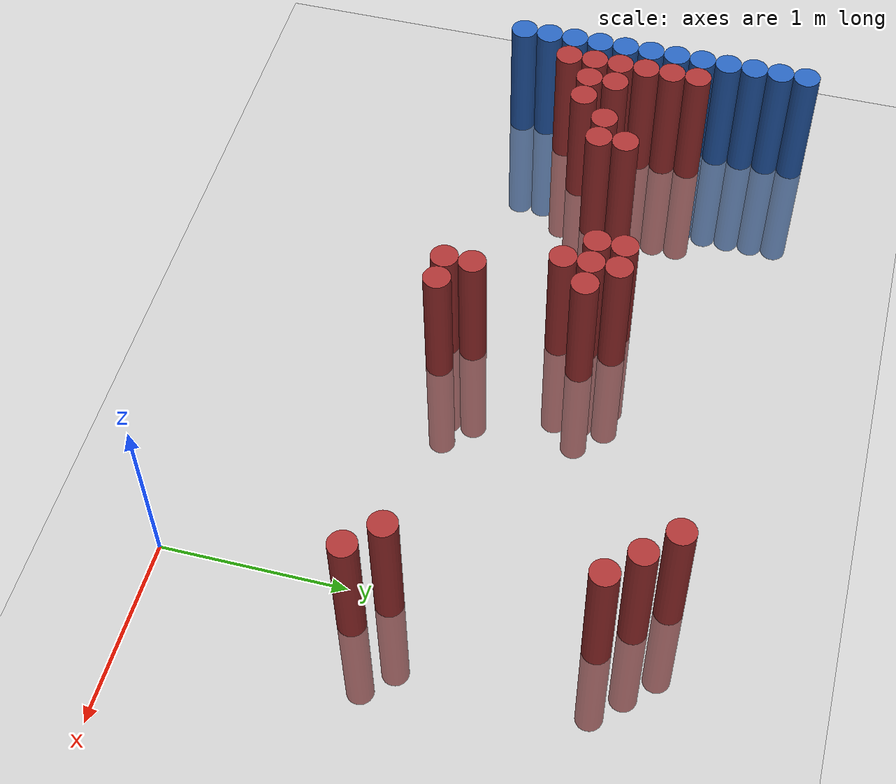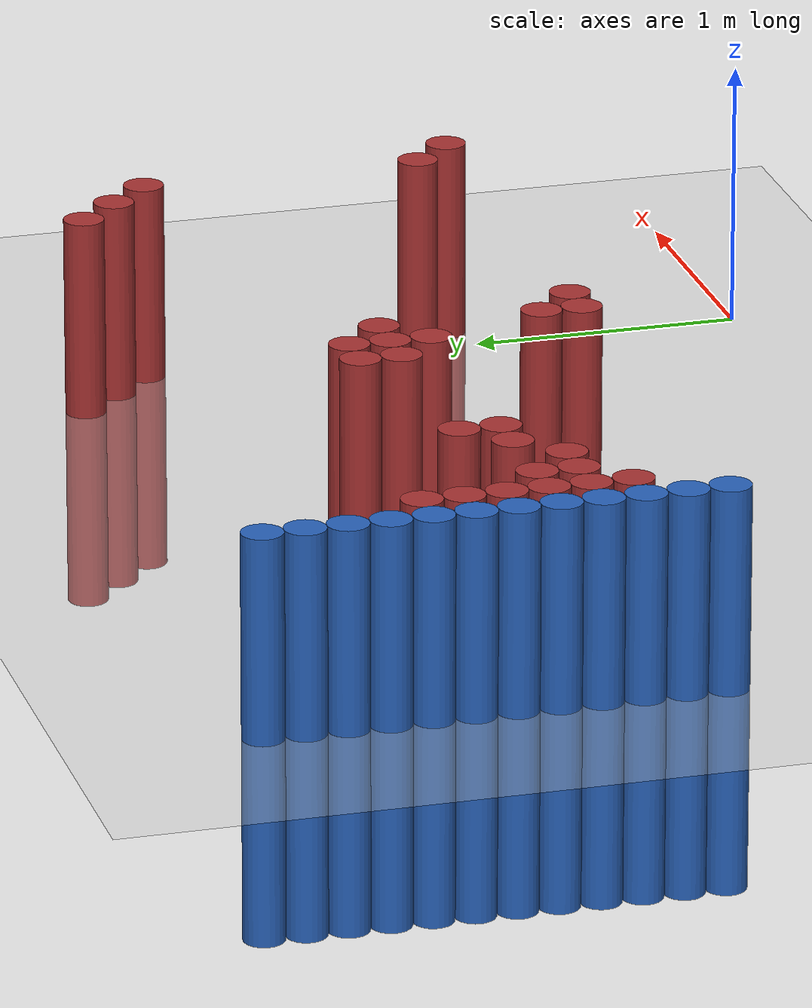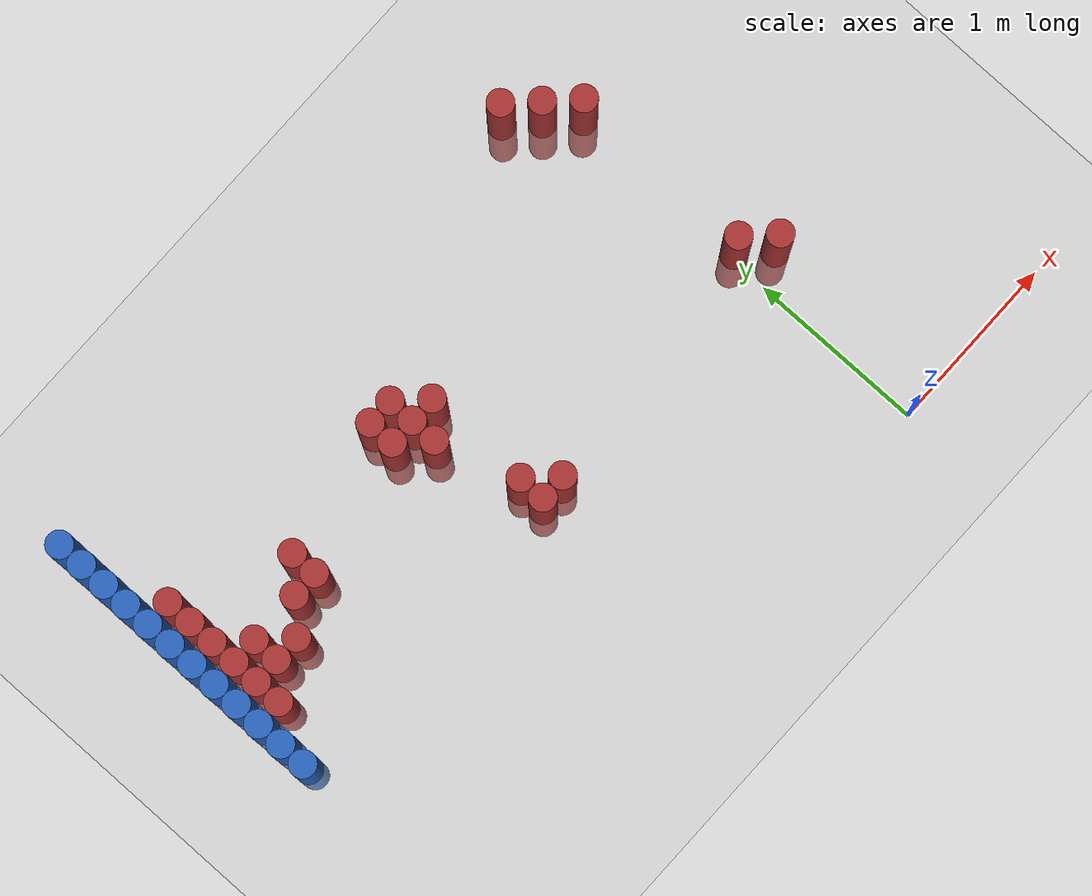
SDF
<sdf version="1.6">
 <world name="default">
  <model name="ground_plane">
   <static>1</static>
   <link name="link">
    <collision name="collision">
     <geometry><plane><normal>0 0 1</normal><size>100 100</size></plane></geometry>
     <surface><friction><ode><mu>100</mu><mu2>50</mu2></ode></friction></surface>
    </collision>
    <visual name="visual">
     <cast_shadows>0</cast_shadows>
     <geometry><plane><normal>0 0 1</normal><size>100 100</size></plane></geometry>
     <material>
      <script><uri>file://media/materials/scripts/gazebo.material</uri><name>Gazebo/Grey</name></script>
     </material>
    </visual>
   </link>
  </model>
  <model name="unit_cylinder_129">
   <static>1</static>
   <pose>-3.425000 1.075000 0.000000 0.000000 0.000000 0.000000</pose>
   <link name="link">
    <inertial>
     <mass>1</mass>
     <inertia><ixx>0.145833</ixx><ixy>0</ixy><ixz>0</ixz><iyy>0.145833</iyy><iyz>0</iyz><izz>0.125</izz></inertia>
    </inertial>
    <collision name="collision">
     <geometry><cylinder><radius>0.075000</radius><length>1.5</length></cylinder></geometry>
    </collision>
    <visual name="visual">
     <geometry><cylinder><radius>0.075000</radius><length>1.5</length></cylinder></geometry>
     <material>
      <ambient>0.152000 0.379000 0.720000 1</ambient>
      <diffuse>0.152000 0.379000 0.720000 1</diffuse>
     </material>
     <material>
      <script><name>Gazebo/Grey</name><uri>file://media/materials/scripts/gazebo.material</uri></script>
     </material>
    </visual>
   </link>
  </model>
  <model name="unit_cylinder_131">
   <static>1</static>
   <pose>-3.425000 1.225000 0.000000 0.000000 0.000000 0.000000</pose>
   <link name="link">
    <inertial>
     <mass>1</mass>
     <inertia><ixx>0.145833</ixx><ixy>0</ixy><ixz>0</ixz><iyy>0.145833</iyy><iyz>0</iyz><izz>0.125</izz></inertia>
    </inertial>
    <collision name="collision">
     <geometry><cylinder><radius>0.075000</radius><length>1.5</length></cylinder></geometry>
    </collision>
    <visual name="visual">
     <geometry><cylinder><radius>0.075000</radius><length>1.5</length></cylinder></geometry>
     <material>
      <ambient>0.152000 0.379000 0.720000 1</ambient>
      <diffuse>0.152000 0.379000 0.720000 1</diffuse>
     </material>
     <material>
      <script><name>Gazebo/Grey</name><uri>file://media/materials/scripts/gazebo.material</uri></script>
     </material>
    </visual>
   </link>
  </model>
  <model name="unit_cylinder_133">
   <static>1</static>
   <pose>-3.425000 1.375000 0.000000 0.000000 0.000000 0.000000</pose>
   <link name="link">
    <inertial>
     <mass>1</mass>
     <inertia><ixx>0.145833</ixx><ixy>0</ixy><ixz>0</ixz><iyy>0.145833</iyy><iyz>0</iyz><izz>0.125</izz></inertia>
    </inertial>
    <collision name="collision">
     <geometry><cylinder><radius>0.075000</radius><length>1.5</length></cylinder></geometry>
    </collision>
    <visual name="visual">
     <geometry><cylinder><radius>0.075000</radius><length>1.5</length></cylinder></geometry>
     <material>
      <ambient>0.152000 0.379000 0.720000 1</ambient>
      <diffuse>0.152000 0.379000 0.720000 1</diffuse>
     </material>
     <material>
      <script><name>Gazebo/Grey</name><uri>file://media/materials/scripts/gazebo.material</uri></script>
     </material>
    </visual>
   </link>
  </model>
  <model name="unit_cylinder_135">
   <static>1</static>
   <pose>-3.425000 1.525000 0.000000 0.000000 0.000000 0.000000</pose>
   <link name="link">
    <inertial>
     <mass>1</mass>
     <inertia><ixx>0.145833</ixx><ixy>0</ixy><ixz>0</ixz><iyy>0.145833</iyy><iyz>0</iyz><izz>0.125</izz></inertia>
    </inertial>
    <collision name="collision">
     <geometry><cylinder><radius>0.075000</radius><length>1.5</length></cylinder></geometry>
    </collision>
    <visual name="visual">
     <geometry><cylinder><radius>0.075000</radius><length>1.5</length></cylinder></geometry>
     <material>
      <ambient>0.152000 0.379000 0.720000 1</ambient>
      <diffuse>0.152000 0.379000 0.720000 1</diffuse>
     </material>
     <material>
      <script><name>Gazebo/Grey</name><uri>file://media/materials/scripts/gazebo.material</uri></script>
     </material>
    </visual>
   </link>
  </model>
  <model name="unit_cylinder_137">
   <static>1</static>
   <pose>-3.425000 1.675000 0.000000 0.000000 0.000000 0.000000</pose>
   <link name="link">
    <inertial>
     <mass>1</mass>
     <inertia><ixx>0.145833</ixx><ixy>0</ixy><ixz>0</ixz><iyy>0.145833</iyy><iyz>0</iyz><izz>0.125</izz></inertia>
    </inertial>
    <collision name="collision">
     <geometry><cylinder><radius>0.075000</radius><length>1.5</length></cylinder></geometry>
    </collision>
    <visual name="visual">
     <geometry><cylinder><radius>0.075000</radius><length>1.5</length></cylinder></geometry>
     <material>
      <ambient>0.152000 0.379000 0.720000 1</ambient>
      <diffuse>0.152000 0.379000 0.720000 1</diffuse>
     </material>
     <material>
      <script><name>Gazebo/Grey</name><uri>file://media/materials/scripts/gazebo.material</uri></script>
     </material>
    </visual>
   </link>
  </model>
  <model name="unit_cylinder_139">
   <static>1</static>
   <pose>-3.425000 1.825000 0.000000 0.000000 0.000000 0.000000</pose>
   <link name="link">
    <inertial>
     <mass>1</mass>
     <inertia><ixx>0.145833</ixx><ixy>0</ixy><ixz>0</ixz><iyy>0.145833</iyy><iyz>0</iyz><izz>0.125</izz></inertia>
    </inertial>
    <collision name="collision">
     <geometry><cylinder><radius>0.075000</radius><length>1.5</length></cylinder></geometry>
    </collision>
    <visual name="visual">
     <geometry><cylinder><radius>0.075000</radius><length>1.5</length></cylinder></geometry>
     <material>
      <ambient>0.152000 0.379000 0.720000 1</ambient>
      <diffuse>0.152000 0.379000 0.720000 1</diffuse>
     </material>
     <material>
      <script><name>Gazebo/Grey</name><uri>file://media/materials/scripts/gazebo.material</uri></script>
     </material>
    </visual>
   </link>
  </model>
  <model name="unit_cylinder_141">
   <static>1</static>
   <pose>-3.425000 1.975000 0.000000 0.000000 0.000000 0.000000</pose>
   <link name="link">
    <inertial>
     <mass>1</mass>
     <inertia><ixx>0.145833</ixx><ixy>0</ixy><ixz>0</ixz><iyy>0.145833</iyy><iyz>0</iyz><izz>0.125</izz></inertia>
    </inertial>
    <collision name="collision">
     <geometry><cylinder><radius>0.075000</radius><length>1.5</length></cylinder></geometry>
    </collision>
    <visual name="visual">
     <geometry><cylinder><radius>0.075000</radius><length>1.5</length></cylinder></geometry>
     <material>
      <ambient>0.152000 0.379000 0.720000 1</ambient>
      <diffuse>0.152000 0.379000 0.720000 1</diffuse>
     </material>
     <material>
      <script><name>Gazebo/Grey</name><uri>file://media/materials/scripts/gazebo.material</uri></script>
     </material>
    </visual>
   </link>
  </model>
  <model name="unit_cylinder_143">
   <static>1</static>
   <pose>-3.425000 2.125000 0.000000 0.000000 0.000000 0.000000</pose>
   <link name="link">
    <inertial>
     <mass>1</mass>
     <inertia><ixx>0.145833</ixx><ixy>0</ixy><ixz>0</ixz><iyy>0.145833</iyy><iyz>0</iyz><izz>0.125</izz></inertia>
    </inertial>
    <collision name="collision">
     <geometry><cylinder><radius>0.075000</radius><length>1.5</length></cylinder></geometry>
    </collision>
    <visual name="visual">
     <geometry><cylinder><radius>0.075000</radius><length>1.5</length></cylinder></geometry>
     <material>
      <ambient>0.152000 0.379000 0.720000 1</ambient>
      <diffuse>0.152000 0.379000 0.720000 1</diffuse>
     </material>
     <material>
      <script><name>Gazebo/Grey</name><uri>file://media/materials/scripts/gazebo.material</uri></script>
     </material>
    </visual>
   </link>
  </model>
  <model name="unit_cylinder_145">
   <static>1</static>
   <pose>-3.425000 2.275000 0.000000 0.000000 0.000000 0.000000</pose>
   <link name="link">
    <inertial>
     <mass>1</mass>
     <inertia><ixx>0.145833</ixx><ixy>0</ixy><ixz>0</ixz><iyy>0.145833</iyy><iyz>0</iyz><izz>0.125</izz></inertia>
    </inertial>
    <collision name="collision">
     <geometry><cylinder><radius>0.075000</radius><length>1.5</length></cylinder></geometry>
    </collision>
    <visual name="visual">
     <geometry><cylinder><radius>0.075000</radius><length>1.5</length></cylinder></geometry>
     <material>
      <ambient>0.152000 0.379000 0.720000 1</ambient>
      <diffuse>0.152000 0.379000 0.720000 1</diffuse>
     </material>
     <material>
      <script><name>Gazebo/Grey</name><uri>file://media/materials/scripts/gazebo.material</uri></script>
     </material>
    </visual>
   </link>
  </model>
  <model name="unit_cylinder_147">
   <static>1</static>
   <pose>-3.425000 2.425000 0.000000 0.000000 0.000000 0.000000</pose>
   <link name="link">
    <inertial>
     <mass>1</mass>
     <inertia><ixx>0.145833</ixx><ixy>0</ixy><ixz>0</ixz><iyy>0.145833</iyy><iyz>0</iyz><izz>0.125</izz></inertia>
    </inertial>
    <collision name="collision">
     <geometry><cylinder><radius>0.075000</radius><length>1.5</length></cylinder></geometry>
    </collision>
    <visual name="visual">
     <geometry><cylinder><radius>0.075000</radius><length>1.5</length></cylinder></geometry>
     <material>
      <ambient>0.152000 0.379000 0.720000 1</ambient>
      <diffuse>0.152000 0.379000 0.720000 1</diffuse>
     </material>
     <material>
      <script><name>Gazebo/Grey</name><uri>file://media/materials/scripts/gazebo.material</uri></script>
     </material>
    </visual>
   </link>
  </model>
  <model name="unit_cylinder_149">
   <static>1</static>
   <pose>-3.425000 2.575000 0.000000 0.000000 0.000000 0.000000</pose>
   <link name="link">
    <inertial>
     <mass>1</mass>
     <inertia><ixx>0.145833</ixx><ixy>0</ixy><ixz>0</ixz><iyy>0.145833</iyy><iyz>0</iyz><izz>0.125</izz></inertia>
    </inertial>
    <collision name="collision">
     <geometry><cylinder><radius>0.075000</radius><length>1.5</length></cylinder></geometry>
    </collision>
    <visual name="visual">
     <geometry><cylinder><radius>0.075000</radius><length>1.5</length></cylinder></geometry>
     <material>
      <ambient>0.152000 0.379000 0.720000 1</ambient>
      <diffuse>0.152000 0.379000 0.720000 1</diffuse>
     </material>
     <material>
      <script><name>Gazebo/Grey</name><uri>file://media/materials/scripts/gazebo.material</uri></script>
     </material>
    </visual>
   </link>
  </model>
  <model name="unit_cylinder_151">
   <static>1</static>
   <pose>-3.425000 2.725000 0.000000 0.000000 0.000000 0.000000</pose>
   <link name="link">
    <inertial>
     <mass>1</mass>
     <inertia><ixx>0.145833</ixx><ixy>0</ixy><ixz>0</ixz><iyy>0.145833</iyy><iyz>0</iyz><izz>0.125</izz></inertia>
    </inertial>
    <collision name="collision">
     <geometry><cylinder><radius>0.075000</radius><length>1.5</length></cylinder></geometry>
    </collision>
    <visual name="visual">
     <geometry><cylinder><radius>0.075000</radius><length>1.5</length></cylinder></geometry>
     <material>
      <ambient>0.152000 0.379000 0.720000 1</ambient>
      <diffuse>0.152000 0.379000 0.720000 1</diffuse>
     </material>
     <material>
      <script><name>Gazebo/Grey</name><uri>file://media/materials/scripts/gazebo.material</uri></script>
     </material>
    </visual>
   </link>
  </model>
  <model name="unit_cylinder_228">
   <static>1</static>
   <pose>-3.425000 1.075000 0.000000 0.000000 0.000000 0.000000</pose>
   <link name="link">
    <inertial>
     <mass>1</mass>
     <inertia><ixx>0.145833</ixx><ixy>0</ixy><ixz>0</ixz><iyy>0.145833</iyy><iyz>0</iyz><izz>0.125</izz></inertia>
    </inertial>
    <collision name="collision">
     <geometry><cylinder><radius>0.075000</radius><length>1.5</length></cylinder></geometry>
    </collision>
    <visual name="visual">
     <geometry><cylinder><radius>0.075000</radius><length>1.5</length></cylinder></geometry>
     <material>
      <ambient>0.152000 0.379000 0.720000 1</ambient>
      <diffuse>0.152000 0.379000 0.720000 1</diffuse>
     </material>
     <material>
      <script><name>Gazebo/Grey</name><uri>file://media/materials/scripts/gazebo.material</uri></script>
     </material>
    </visual>
   </link>
  </model>
  <model name="unit_cylinder_229">
   <static>1</static>
   <pose>-3.425000 1.225000 0.000000 0.000000 0.000000 0.000000</pose>
   <link name="link">
    <inertial>
     <mass>1</mass>
     <inertia><ixx>0.145833</ixx><ixy>0</ixy><ixz>0</ixz><iyy>0.145833</iyy><iyz>0</iyz><izz>0.125</izz></inertia>
    </inertial>
    <collision name="collision">
     <geometry><cylinder><radius>0.075000</radius><length>1.5</length></cylinder></geometry>
    </collision>
    <visual name="visual">
     <geometry><cylinder><radius>0.075000</radius><length>1.5</length></cylinder></geometry>
     <material>
      <ambient>0.152000 0.379000 0.720000 1</ambient>
      <diffuse>0.152000 0.379000 0.720000 1</diffuse>
     </material>
     <material>
      <script><name>Gazebo/Grey</name><uri>file://media/materials/scripts/gazebo.material</uri></script>
     </material>
    </visual>
   </link>
  </model>
  <model name="unit_cylinder_230">
   <static>1</static>
   <pose>-3.425000 1.375000 0.000000 0.000000 0.000000 0.000000</pose>
   <link name="link">
    <inertial>
     <mass>1</mass>
     <inertia><ixx>0.145833</ixx><ixy>0</ixy><ixz>0</ixz><iyy>0.145833</iyy><iyz>0</iyz><izz>0.125</izz></inertia>
    </inertial>
    <collision name="collision">
     <geometry><cylinder><radius>0.075000</radius><length>1.5</length></cylinder></geometry>
    </collision>
    <visual name="visual">
     <geometry><cylinder><radius>0.075000</radius><length>1.5</length></cylinder></geometry>
     <material>
      <ambient>0.152000 0.379000 0.720000 1</ambient>
      <diffuse>0.152000 0.379000 0.720000 1</diffuse>
     </material>
     <material>
      <script><name>Gazebo/Grey</name><uri>file://media/materials/scripts/gazebo.material</uri></script>
     </material>
    </visual>
   </link>
  </model>
  <model name="unit_cylinder_231">
   <static>1</static>
   <pose>-3.425000 1.525000 0.000000 0.000000 0.000000 0.000000</pose>
   <link name="link">
    <inertial>
     <mass>1</mass>
     <inertia><ixx>0.145833</ixx><ixy>0</ixy><ixz>0</ixz><iyy>0.145833</iyy><iyz>0</iyz><izz>0.125</izz></inertia>
    </inertial>
    <collision name="collision">
     <geometry><cylinder><radius>0.075000</radius><length>1.5</length></cylinder></geometry>
    </collision>
    <visual name="visual">
     <geometry><cylinder><radius>0.075000</radius><length>1.5</length></cylinder></geometry>
     <material>
      <ambient>0.152000 0.379000 0.720000 1</ambient>
      <diffuse>0.152000 0.379000 0.720000 1</diffuse>
     </material>
     <material>
      <script><name>Gazebo/Grey</name><uri>file://media/materials/scripts/gazebo.material</uri></script>
     </material>
    </visual>
   </link>
  </model>
  <model name="unit_cylinder_232">
   <static>1</static>
   <pose>-3.425000 1.675000 0.000000 0.000000 0.000000 0.000000</pose>
   <link name="link">
    <inertial>
     <mass>1</mass>
     <inertia><ixx>0.145833</ixx><ixy>0</ixy><ixz>0</ixz><iyy>0.145833</iyy><iyz>0</iyz><izz>0.125</izz></inertia>
    </inertial>
    <collision name="collision">
     <geometry><cylinder><radius>0.075000</radius><length>1.5</length></cylinder></geometry>
    </collision>
    <visual name="visual">
     <geometry><cylinder><radius>0.075000</radius><length>1.5</length></cylinder></geometry>
     <material>
      <ambient>0.152000 0.379000 0.720000 1</ambient>
      <diffuse>0.152000 0.379000 0.720000 1</diffuse>
     </material>
     <material>
      <script><name>Gazebo/Grey</name><uri>file://media/materials/scripts/gazebo.material</uri></script>
     </material>
    </visual>
   </link>
  </model>
  <model name="unit_cylinder_233">
   <static>1</static>
   <pose>-3.425000 1.825000 0.000000 0.000000 0.000000 0.000000</pose>
   <link name="link">
    <inertial>
     <mass>1</mass>
     <inertia><ixx>0.145833</ixx><ixy>0</ixy><ixz>0</ixz><iyy>0.145833</iyy><iyz>0</iyz><izz>0.125</izz></inertia>
    </inertial>
    <collision name="collision">
     <geometry><cylinder><radius>0.075000</radius><length>1.5</length></cylinder></geometry>
    </collision>
    <visual name="visual">
     <geometry><cylinder><radius>0.075000</radius><length>1.5</length></cylinder></geometry>
     <material>
      <ambient>0.152000 0.379000 0.720000 1</ambient>
      <diffuse>0.152000 0.379000 0.720000 1</diffuse>
     </material>
     <material>
      <script><name>Gazebo/Grey</name><uri>file://media/materials/scripts/gazebo.material</uri></script>
     </material>
    </visual>
   </link>
  </model>
  <model name="unit_cylinder_234">
   <static>1</static>
   <pose>-3.425000 1.975000 0.000000 0.000000 0.000000 0.000000</pose>
   <link name="link">
    <inertial>
     <mass>1</mass>
     <inertia><ixx>0.145833</ixx><ixy>0</ixy><ixz>0</ixz><iyy>0.145833</iyy><iyz>0</iyz><izz>0.125</izz></inertia>
    </inertial>
    <collision name="collision">
     <geometry><cylinder><radius>0.075000</radius><length>1.5</length></cylinder></geometry>
    </collision>
    <visual name="visual">
     <geometry><cylinder><radius>0.075000</radius><length>1.5</length></cylinder></geometry>
     <material>
      <ambient>0.152000 0.379000 0.720000 1</ambient>
      <diffuse>0.152000 0.379000 0.720000 1</diffuse>
     </material>
     <material>
      <script><name>Gazebo/Grey</name><uri>file://media/materials/scripts/gazebo.material</uri></script>
     </material>
    </visual>
   </link>
  </model>
  <model name="unit_cylinder_235">
   <static>1</static>
   <pose>-3.425000 2.125000 0.000000 0.000000 0.000000 0.000000</pose>
   <link name="link">
    <inertial>
     <mass>1</mass>
     <inertia><ixx>0.145833</ixx><ixy>0</ixy><ixz>0</ixz><iyy>0.145833</iyy><iyz>0</iyz><izz>0.125</izz></inertia>
    </inertial>
    <collision name="collision">
     <geometry><cylinder><radius>0.075000</radius><length>1.5</length></cylinder></geometry>
    </collision>
    <visual name="visual">
     <geometry><cylinder><radius>0.075000</radius><length>1.5</length></cylinder></geometry>
     <material>
      <ambient>0.152000 0.379000 0.720000 1</ambient>
      <diffuse>0.152000 0.379000 0.720000 1</diffuse>
     </material>
     <material>
      <script><name>Gazebo/Grey</name><uri>file://media/materials/scripts/gazebo.material</uri></script>
     </material>
    </visual>
   </link>
  </model>
  <model name="unit_cylinder_236">
   <static>1</static>
   <pose>-3.425000 2.275000 0.000000 0.000000 0.000000 0.000000</pose>
   <link name="link">
    <inertial>
     <mass>1</mass>
     <inertia><ixx>0.145833</ixx><ixy>0</ixy><ixz>0</ixz><iyy>0.145833</iyy><iyz>0</iyz><izz>0.125</izz></inertia>
    </inertial>
    <collision name="collision">
     <geometry><cylinder><radius>0.075000</radius><length>1.5</length></cylinder></geometry>
    </collision>
    <visual name="visual">
     <geometry><cylinder><radius>0.075000</radius><length>1.5</length></cylinder></geometry>
     <material>
      <ambient>0.152000 0.379000 0.720000 1</ambient>
      <diffuse>0.152000 0.379000 0.720000 1</diffuse>
     </material>
     <material>
      <script><name>Gazebo/Grey</name><uri>file://media/materials/scripts/gazebo.material</uri></script>
     </material>
    </visual>
   </link>
  </model>
  <model name="unit_cylinder_237">
   <static>1</static>
   <pose>-3.425000 2.425000 0.000000 0.000000 0.000000 0.000000</pose>
   <link name="link">
    <inertial>
     <mass>1</mass>
     <inertia><ixx>0.145833</ixx><ixy>0</ixy><ixz>0</ixz><iyy>0.145833</iyy><iyz>0</iyz><izz>0.125</izz></inertia>
    </inertial>
    <collision name="collision">
     <geometry><cylinder><radius>0.075000</radius><length>1.5</length></cylinder></geometry>
    </collision>
    <visual name="visual">
     <geometry><cylinder><radius>0.075000</radius><length>1.5</length></cylinder></geometry>
     <material>
      <ambient>0.152000 0.379000 0.720000 1</ambient>
      <diffuse>0.152000 0.379000 0.720000 1</diffuse>
     </material>
     <material>
      <script><name>Gazebo/Grey</name><uri>file://media/materials/scripts/gazebo.material</uri></script>
     </material>
    </visual>
   </link>
  </model>
  <model name="unit_cylinder_238">
   <static>1</static>
   <pose>-3.425000 2.575000 0.000000 0.000000 0.000000 0.000000</pose>
   <link name="link">
    <inertial>
     <mass>1</mass>
     <inertia><ixx>0.145833</ixx><ixy>0</ixy><ixz>0</ixz><iyy>0.145833</iyy><iyz>0</iyz><izz>0.125</izz></inertia>
    </inertial>
    <collision name="collision">
     <geometry><cylinder><radius>0.075000</radius><length>1.5</length></cylinder></geometry>
    </collision>
    <visual name="visual">
     <geometry><cylinder><radius>0.075000</radius><length>1.5</length></cylinder></geometry>
     <material>
      <ambient>0.152000 0.379000 0.720000 1</ambient>
      <diffuse>0.152000 0.379000 0.720000 1</diffuse>
     </material>
     <material>
      <script><name>Gazebo/Grey</name><uri>file://media/materials/scripts/gazebo.material</uri></script>
     </material>
    </visual>
   </link>
  </model>
  <model name="unit_cylinder_239">
   <static>1</static>
   <pose>-3.425000 2.725000 0.000000 0.000000 0.000000 0.000000</pose>
   <link name="link">
    <inertial>
     <mass>1</mass>
     <inertia><ixx>0.145833</ixx><ixy>0</ixy><ixz>0</ixz><iyy>0.145833</iyy><iyz>0</iyz><izz>0.125</izz></inertia>
    </inertial>
    <collision name="collision">
     <geometry><cylinder><radius>0.075000</radius><length>1.5</length></cylinder></geometry>
    </collision>
    <visual name="visual">
     <geometry><cylinder><radius>0.075000</radius><length>1.5</length></cylinder></geometry>
     <material>
      <ambient>0.152000 0.379000 0.720000 1</ambient>
      <diffuse>0.152000 0.379000 0.720000 1</diffuse>
     </material>
     <material>
      <script><name>Gazebo/Grey</name><uri>file://media/materials/scripts/gazebo.material</uri></script>
     </material>
    </visual>
   </link>
  </model>
  <model name="unit_cylinder_263">
   <static>1</static>
   <pose>-3.275000 1.375000 0.000000 0.000000 0.000000 0.000000</pose>
   <link name="link">
    <inertial>
     <mass>1</mass>
     <inertia><ixx>0.145833</ixx><ixy>0</ixy><ixz>0</ixz><iyy>0.145833</iyy><iyz>0</iyz><izz>0.125</izz></inertia>
    </inertial>
    <collision name="collision">
     <geometry><cylinder><radius>0.075000</radius><length>1.5</length></cylinder></geometry>
    </collision>
    <visual name="visual">
     <geometry><cylinder><radius>0.075000</radius><length>1.5</length></cylinder></geometry>
     <material>
      <ambient>0.648000 0.192000 0.192000 1</ambient>
      <diffuse>0.648000 0.192000 0.192000 1</diffuse>
     </material>
     <material>
      <script><name>Gazebo/Grey</name><uri>file://media/materials/scripts/gazebo.material</uri></script>
     </material>
    </visual>
   </link>
  </model>
  <model name="unit_cylinder_264">
   <static>1</static>
   <pose>-3.275000 1.525000 0.000000 0.000000 0.000000 0.000000</pose>
   <link name="link">
    <inertial>
     <mass>1</mass>
     <inertia><ixx>0.145833</ixx><ixy>0</ixy><ixz>0</ixz><iyy>0.145833</iyy><iyz>0</iyz><izz>0.125</izz></inertia>
    </inertial>
    <collision name="collision">
     <geometry><cylinder><radius>0.075000</radius><length>1.5</length></cylinder></geometry>
    </collision>
    <visual name="visual">
     <geometry><cylinder><radius>0.075000</radius><length>1.5</length></cylinder></geometry>
     <material>
      <ambient>0.648000 0.192000 0.192000 1</ambient>
      <diffuse>0.648000 0.192000 0.192000 1</diffuse>
     </material>
     <material>
      <script><name>Gazebo/Grey</name><uri>file://media/materials/scripts/gazebo.material</uri></script>
     </material>
    </visual>
   </link>
  </model>
  <model name="unit_cylinder_265">
   <static>1</static>
   <pose>-3.275000 1.675000 0.000000 0.000000 0.000000 0.000000</pose>
   <link name="link">
    <inertial>
     <mass>1</mass>
     <inertia><ixx>0.145833</ixx><ixy>0</ixy><ixz>0</ixz><iyy>0.145833</iyy><iyz>0</iyz><izz>0.125</izz></inertia>
    </inertial>
    <collision name="collision">
     <geometry><cylinder><radius>0.075000</radius><length>1.5</length></cylinder></geometry>
    </collision>
    <visual name="visual">
     <geometry><cylinder><radius>0.075000</radius><length>1.5</length></cylinder></geometry>
     <material>
      <ambient>0.648000 0.192000 0.192000 1</ambient>
      <diffuse>0.648000 0.192000 0.192000 1</diffuse>
     </material>
     <material>
      <script><name>Gazebo/Grey</name><uri>file://media/materials/scripts/gazebo.material</uri></script>
     </material>
    </visual>
   </link>
  </model>
  <model name="unit_cylinder_266">
   <static>1</static>
   <pose>-3.275000 1.825000 0.000000 0.000000 0.000000 0.000000</pose>
   <link name="link">
    <inertial>
     <mass>1</mass>
     <inertia><ixx>0.145833</ixx><ixy>0</ixy><ixz>0</ixz><iyy>0.145833</iyy><iyz>0</iyz><izz>0.125</izz></inertia>
    </inertial>
    <collision name="collision">
     <geometry><cylinder><radius>0.075000</radius><length>1.5</length></cylinder></geometry>
    </collision>
    <visual name="visual">
     <geometry><cylinder><radius>0.075000</radius><length>1.5</length></cylinder></geometry>
     <material>
      <ambient>0.648000 0.192000 0.192000 1</ambient>
      <diffuse>0.648000 0.192000 0.192000 1</diffuse>
     </material>
     <material>
      <script><name>Gazebo/Grey</name><uri>file://media/materials/scripts/gazebo.material</uri></script>
     </material>
    </visual>
   </link>
  </model>
  <model name="unit_cylinder_267">
   <static>1</static>
   <pose>-3.275000 1.975000 0.000000 0.000000 0.000000 0.000000</pose>
   <link name="link">
    <inertial>
     <mass>1</mass>
     <inertia><ixx>0.145833</ixx><ixy>0</ixy><ixz>0</ixz><iyy>0.145833</iyy><iyz>0</iyz><izz>0.125</izz></inertia>
    </inertial>
    <collision name="collision">
     <geometry><cylinder><radius>0.075000</radius><length>1.5</length></cylinder></geometry>
    </collision>
    <visual name="visual">
     <geometry><cylinder><radius>0.075000</radius><length>1.5</length></cylinder></geometry>
     <material>
      <ambient>0.648000 0.192000 0.192000 1</ambient>
      <diffuse>0.648000 0.192000 0.192000 1</diffuse>
     </material>
     <material>
      <script><name>Gazebo/Grey</name><uri>file://media/materials/scripts/gazebo.material</uri></script>
     </material>
    </visual>
   </link>
  </model>
  <model name="unit_cylinder_268">
   <static>1</static>
   <pose>-3.275000 2.125000 0.000000 0.000000 0.000000 0.000000</pose>
   <link name="link">
    <inertial>
     <mass>1</mass>
     <inertia><ixx>0.145833</ixx><ixy>0</ixy><ixz>0</ixz><iyy>0.145833</iyy><iyz>0</iyz><izz>0.125</izz></inertia>
    </inertial>
    <collision name="collision">
     <geometry><cylinder><radius>0.075000</radius><length>1.5</length></cylinder></geometry>
    </collision>
    <visual name="visual">
     <geometry><cylinder><radius>0.075000</radius><length>1.5</length></cylinder></geometry>
     <material>
      <ambient>0.648000 0.192000 0.192000 1</ambient>
      <diffuse>0.648000 0.192000 0.192000 1</diffuse>
     </material>
     <material>
      <script><name>Gazebo/Grey</name><uri>file://media/materials/scripts/gazebo.material</uri></script>
     </material>
    </visual>
   </link>
  </model>
  <model name="unit_cylinder_285">
   <static>1</static>
   <pose>-3.125000 1.525000 0.000000 0.000000 0.000000 0.000000</pose>
   <link name="link">
    <inertial>
     <mass>1</mass>
     <inertia><ixx>0.145833</ixx><ixy>0</ixy><ixz>0</ixz><iyy>0.145833</iyy><iyz>0</iyz><izz>0.125</izz></inertia>
    </inertial>
    <collision name="collision">
     <geometry><cylinder><radius>0.075000</radius><length>1.5</length></cylinder></geometry>
    </collision>
    <visual name="visual">
     <geometry><cylinder><radius>0.075000</radius><length>1.5</length></cylinder></geometry>
     <material>
      <ambient>0.648000 0.192000 0.192000 1</ambient>
      <diffuse>0.648000 0.192000 0.192000 1</diffuse>
     </material>
     <material>
      <script><name>Gazebo/Grey</name><uri>file://media/materials/scripts/gazebo.material</uri></script>
     </material>
    </visual>
   </link>
  </model>
  <model name="unit_cylinder_286">
   <static>1</static>
   <pose>-3.125000 1.675000 0.000000 0.000000 0.000000 0.000000</pose>
   <link name="link">
    <inertial>
     <mass>1</mass>
     <inertia><ixx>0.145833</ixx><ixy>0</ixy><ixz>0</ixz><iyy>0.145833</iyy><iyz>0</iyz><izz>0.125</izz></inertia>
    </inertial>
    <collision name="collision">
     <geometry><cylinder><radius>0.075000</radius><length>1.5</length></cylinder></geometry>
    </collision>
    <visual name="visual">
     <geometry><cylinder><radius>0.075000</radius><length>1.5</length></cylinder></geometry>
     <material>
      <ambient>0.648000 0.192000 0.192000 1</ambient>
      <diffuse>0.648000 0.192000 0.192000 1</diffuse>
     </material>
     <material>
      <script><name>Gazebo/Grey</name><uri>file://media/materials/scripts/gazebo.material</uri></script>
     </material>
    </visual>
   </link>
  </model>
  <model name="unit_cylinder_290">
   <static>1</static>
   <pose>-2.975000 1.525000 0.000000 0.000000 0.000000 0.000000</pose>
   <link name="link">
    <inertial>
     <mass>1</mass>
     <inertia><ixx>0.145833</ixx><ixy>0</ixy><ixz>0</ixz><iyy>0.145833</iyy><iyz>0</iyz><izz>0.125</izz></inertia>
    </inertial>
    <collision name="collision">
     <geometry><cylinder><radius>0.075000</radius><length>1.5</length></cylinder></geometry>
    </collision>
    <visual name="visual">
     <geometry><cylinder><radius>0.075000</radius><length>1.5</length></cylinder></geometry>
     <material>
      <ambient>0.648000 0.192000 0.192000 1</ambient>
      <diffuse>0.648000 0.192000 0.192000 1</diffuse>
     </material>
     <material>
      <script><name>Gazebo/Grey</name><uri>file://media/materials/scripts/gazebo.material</uri></script>
     </material>
    </visual>
   </link>
  </model>
  <model name="unit_cylinder_292">
   <static>1</static>
   <pose>-2.825000 1.675000 0.000000 0.000000 0.000000 0.000000</pose>
   <link name="link">
    <inertial>
     <mass>1</mass>
     <inertia><ixx>0.145833</ixx><ixy>0</ixy><ixz>0</ixz><iyy>0.145833</iyy><iyz>0</iyz><izz>0.125</izz></inertia>
    </inertial>
    <collision name="collision">
     <geometry><cylinder><radius>0.075000</radius><length>1.5</length></cylinder></geometry>
    </collision>
    <visual name="visual">
     <geometry><cylinder><radius>0.075000</radius><length>1.5</length></cylinder></geometry>
     <material>
      <ambient>0.648000 0.192000 0.192000 1</ambient>
      <diffuse>0.648000 0.192000 0.192000 1</diffuse>
     </material>
     <material>
      <script><name>Gazebo/Grey</name><uri>file://media/materials/scripts/gazebo.material</uri></script>
     </material>
    </visual>
   </link>
  </model>
  <model name="unit_cylinder_296">
   <static>1</static>
   <pose>-2.675000 1.675000 0.000000 0.000000 0.000000 0.000000</pose>
   <link name="link">
    <inertial>
     <mass>1</mass>
     <inertia><ixx>0.145833</ixx><ixy>0</ixy><ixz>0</ixz><iyy>0.145833</iyy><iyz>0</iyz><izz>0.125</izz></inertia>
    </inertial>
    <collision name="collision">
     <geometry><cylinder><radius>0.075000</radius><length>1.5</length></cylinder></geometry>
    </collision>
    <visual name="visual">
     <geometry><cylinder><radius>0.075000</radius><length>1.5</length></cylinder></geometry>
     <material>
      <ambient>0.648000 0.192000 0.192000 1</ambient>
      <diffuse>0.648000 0.192000 0.192000 1</diffuse>
     </material>
     <material>
      <script><name>Gazebo/Grey</name><uri>file://media/materials/scripts/gazebo.material</uri></script>
     </material>
    </visual>
   </link>
  </model>
  <model name="unit_cylinder_297">
   <static>1</static>
   <pose>-2.675000 1.825000 0.000000 0.000000 0.000000 0.000000</pose>
   <link name="link">
    <inertial>
     <mass>1</mass>
     <inertia><ixx>0.145833</ixx><ixy>0</ixy><ixz>0</ixz><iyy>0.145833</iyy><iyz>0</iyz><izz>0.125</izz></inertia>
    </inertial>
    <collision name="collision">
     <geometry><cylinder><radius>0.075000</radius><length>1.5</length></cylinder></geometry>
    </collision>
    <visual name="visual">
     <geometry><cylinder><radius>0.075000</radius><length>1.5</length></cylinder></geometry>
     <material>
      <ambient>0.648000 0.192000 0.192000 1</ambient>
      <diffuse>0.648000 0.192000 0.192000 1</diffuse>
     </material>
     <material>
      <script><name>Gazebo/Grey</name><uri>file://media/materials/scripts/gazebo.material</uri></script>
     </material>
    </visual>
   </link>
  </model>
  <model name="unit_cylinder_314">
   <static>1</static>
   <pose>-1.925000 1.825000 0.000000 0.000000 0.000000 0.000000</pose>
   <link name="link">
    <inertial>
     <mass>1</mass>
     <inertia><ixx>0.145833</ixx><ixy>0</ixy><ixz>0</ixz><iyy>0.145833</iyy><iyz>0</iyz><izz>0.125</izz></inertia>
    </inertial>
    <collision name="collision">
     <geometry><cylinder><radius>0.075000</radius><length>1.5</length></cylinder></geometry>
    </collision>
    <visual name="visual">
     <geometry><cylinder><radius>0.075000</radius><length>1.5</length></cylinder></geometry>
     <material>
      <ambient>0.648000 0.192000 0.192000 1</ambient>
      <diffuse>0.648000 0.192000 0.192000 1</diffuse>
     </material>
     <material>
      <script><name>Gazebo/Grey</name><uri>file://media/materials/scripts/gazebo.material</uri></script>
     </material>
    </visual>
   </link>
  </model>
  <model name="unit_cylinder_315">
   <static>1</static>
   <pose>-1.925000 1.975000 0.000000 0.000000 0.000000 0.000000</pose>
   <link name="link">
    <inertial>
     <mass>1</mass>
     <inertia><ixx>0.145833</ixx><ixy>0</ixy><ixz>0</ixz><iyy>0.145833</iyy><iyz>0</iyz><izz>0.125</izz></inertia>
    </inertial>
    <collision name="collision">
     <geometry><cylinder><radius>0.075000</radius><length>1.5</length></cylinder></geometry>
    </collision>
    <visual name="visual">
     <geometry><cylinder><radius>0.075000</radius><length>1.5</length></cylinder></geometry>
     <material>
      <ambient>0.648000 0.192000 0.192000 1</ambient>
      <diffuse>0.648000 0.192000 0.192000 1</diffuse>
     </material>
     <material>
      <script><name>Gazebo/Grey</name><uri>file://media/materials/scripts/gazebo.material</uri></script>
     </material>
    </visual>
   </link>
  </model>
  <model name="unit_cylinder_319">
   <static>1</static>
   <pose>-1.775000 1.675000 0.000000 0.000000 0.000000 0.000000</pose>
   <link name="link">
    <inertial>
     <mass>1</mass>
     <inertia><ixx>0.145833</ixx><ixy>0</ixy><ixz>0</ixz><iyy>0.145833</iyy><iyz>0</iyz><izz>0.125</izz></inertia>
    </inertial>
    <collision name="collision">
     <geometry><cylinder><radius>0.075000</radius><length>1.5</length></cylinder></geometry>
    </collision>
    <visual name="visual">
     <geometry><cylinder><radius>0.075000</radius><length>1.5</length></cylinder></geometry>
     <material>
      <ambient>0.648000 0.192000 0.192000 1</ambient>
      <diffuse>0.648000 0.192000 0.192000 1</diffuse>
     </material>
     <material>
      <script><name>Gazebo/Grey</name><uri>file://media/materials/scripts/gazebo.material</uri></script>
     </material>
    </visual>
   </link>
  </model>
  <model name="unit_cylinder_320">
   <static>1</static>
   <pose>-1.775000 1.825000 0.000000 0.000000 0.000000 0.000000</pose>
   <link name="link">
    <inertial>
     <mass>1</mass>
     <inertia><ixx>0.145833</ixx><ixy>0</ixy><ixz>0</ixz><iyy>0.145833</iyy><iyz>0</iyz><izz>0.125</izz></inertia>
    </inertial>
    <collision name="collision">
     <geometry><cylinder><radius>0.075000</radius><length>1.5</length></cylinder></geometry>
    </collision>
    <visual name="visual">
     <geometry><cylinder><radius>0.075000</radius><length>1.5</length></cylinder></geometry>
     <material>
      <ambient>0.648000 0.192000 0.192000 1</ambient>
      <diffuse>0.648000 0.192000 0.192000 1</diffuse>
     </material>
     <material>
      <script><name>Gazebo/Grey</name><uri>file://media/materials/scripts/gazebo.material</uri></script>
     </material>
    </visual>
   </link>
  </model>
  <model name="unit_cylinder_321">
   <static>1</static>
   <pose>-1.775000 1.975000 0.000000 0.000000 0.000000 0.000000</pose>
   <link name="link">
    <inertial>
     <mass>1</mass>
     <inertia><ixx>0.145833</ixx><ixy>0</ixy><ixz>0</ixz><iyy>0.145833</iyy><iyz>0</iyz><izz>0.125</izz></inertia>
    </inertial>
    <collision name="collision">
     <geometry><cylinder><radius>0.075000</radius><length>1.5</length></cylinder></geometry>
    </collision>
    <visual name="visual">
     <geometry><cylinder><radius>0.075000</radius><length>1.5</length></cylinder></geometry>
     <material>
      <ambient>0.648000 0.192000 0.192000 1</ambient>
      <diffuse>0.648000 0.192000 0.192000 1</diffuse>
     </material>
     <material>
      <script><name>Gazebo/Grey</name><uri>file://media/materials/scripts/gazebo.material</uri></script>
     </material>
    </visual>
   </link>
  </model>
  <model name="unit_cylinder_328">
   <static>1</static>
   <pose>-1.625000 1.075000 0.000000 0.000000 0.000000 0.000000</pose>
   <link name="link">
    <inertial>
     <mass>1</mass>
     <inertia><ixx>0.145833</ixx><ixy>0</ixy><ixz>0</ixz><iyy>0.145833</iyy><iyz>0</iyz><izz>0.125</izz></inertia>
    </inertial>
    <collision name="collision">
     <geometry><cylinder><radius>0.075000</radius><length>1.5</length></cylinder></geometry>
    </collision>
    <visual name="visual">
     <geometry><cylinder><radius>0.075000</radius><length>1.5</length></cylinder></geometry>
     <material>
      <ambient>0.648000 0.192000 0.192000 1</ambient>
      <diffuse>0.648000 0.192000 0.192000 1</diffuse>
     </material>
     <material>
      <script><name>Gazebo/Grey</name><uri>file://media/materials/scripts/gazebo.material</uri></script>
     </material>
    </visual>
   </link>
  </model>
  <model name="unit_cylinder_329">
   <static>1</static>
   <pose>-1.625000 1.225000 0.000000 0.000000 0.000000 0.000000</pose>
   <link name="link">
    <inertial>
     <mass>1</mass>
     <inertia><ixx>0.145833</ixx><ixy>0</ixy><ixz>0</ixz><iyy>0.145833</iyy><iyz>0</iyz><izz>0.125</izz></inertia>
    </inertial>
    <collision name="collision">
     <geometry><cylinder><radius>0.075000</radius><length>1.5</length></cylinder></geometry>
    </collision>
    <visual name="visual">
     <geometry><cylinder><radius>0.075000</radius><length>1.5</length></cylinder></geometry>
     <material>
      <ambient>0.648000 0.192000 0.192000 1</ambient>
      <diffuse>0.648000 0.192000 0.192000 1</diffuse>
     </material>
     <material>
      <script><name>Gazebo/Grey</name><uri>file://media/materials/scripts/gazebo.material</uri></script>
     </material>
    </visual>
   </link>
  </model>
  <model name="unit_cylinder_330">
   <static>1</static>
   <pose>-1.625000 1.825000 0.000000 0.000000 0.000000 0.000000</pose>
   <link name="link">
    <inertial>
     <mass>1</mass>
     <inertia><ixx>0.145833</ixx><ixy>0</ixy><ixz>0</ixz><iyy>0.145833</iyy><iyz>0</iyz><izz>0.125</izz></inertia>
    </inertial>
    <collision name="collision">
     <geometry><cylinder><radius>0.075000</radius><length>1.5</length></cylinder></geometry>
    </collision>
    <visual name="visual">
     <geometry><cylinder><radius>0.075000</radius><length>1.5</length></cylinder></geometry>
     <material>
      <ambient>0.648000 0.192000 0.192000 1</ambient>
      <diffuse>0.648000 0.192000 0.192000 1</diffuse>
     </material>
     <material>
      <script><name>Gazebo/Grey</name><uri>file://media/materials/scripts/gazebo.material</uri></script>
     </material>
    </visual>
   </link>
  </model>
  <model name="unit_cylinder_337">
   <static>1</static>
   <pose>-1.475000 1.075000 0.000000 0.000000 0.000000 0.000000</pose>
   <link name="link">
    <inertial>
     <mass>1</mass>
     <inertia><ixx>0.145833</ixx><ixy>0</ixy><ixz>0</ixz><iyy>0.145833</iyy><iyz>0</iyz><izz>0.125</izz></inertia>
    </inertial>
    <collision name="collision">
     <geometry><cylinder><radius>0.075000</radius><length>1.5</length></cylinder></geometry>
    </collision>
    <visual name="visual">
     <geometry><cylinder><radius>0.075000</radius><length>1.5</length></cylinder></geometry>
     <material>
      <ambient>0.648000 0.192000 0.192000 1</ambient>
      <diffuse>0.648000 0.192000 0.192000 1</diffuse>
     </material>
     <material>
      <script><name>Gazebo/Grey</name><uri>file://media/materials/scripts/gazebo.material</uri></script>
     </material>
    </visual>
   </link>
  </model>
  <model name="unit_cylinder_374">
   <static>1</static>
   <pose>-0.275000 2.575000 0.000000 0.000000 0.000000 0.000000</pose>
   <link name="link">
    <inertial>
     <mass>1</mass>
     <inertia><ixx>0.145833</ixx><ixy>0</ixy><ixz>0</ixz><iyy>0.145833</iyy><iyz>0</iyz><izz>0.125</izz></inertia>
    </inertial>
    <collision name="collision">
     <geometry><cylinder><radius>0.075000</radius><length>1.5</length></cylinder></geometry>
    </collision>
    <visual name="visual">
     <geometry><cylinder><radius>0.075000</radius><length>1.5</length></cylinder></geometry>
     <material>
      <ambient>0.648000 0.192000 0.192000 1</ambient>
      <diffuse>0.648000 0.192000 0.192000 1</diffuse>
     </material>
     <material>
      <script><name>Gazebo/Grey</name><uri>file://media/materials/scripts/gazebo.material</uri></script>
     </material>
    </visual>
   </link>
  </model>
  <model name="unit_cylinder_377">
   <static>1</static>
   <pose>-0.125000 2.425000 0.000000 0.000000 0.000000 0.000000</pose>
   <link name="link">
    <inertial>
     <mass>1</mass>
     <inertia><ixx>0.145833</ixx><ixy>0</ixy><ixz>0</ixz><iyy>0.145833</iyy><iyz>0</iyz><izz>0.125</izz></inertia>
    </inertial>
    <collision name="collision">
     <geometry><cylinder><radius>0.075000</radius><length>1.5</length></cylinder></geometry>
    </collision>
    <visual name="visual">
     <geometry><cylinder><radius>0.075000</radius><length>1.5</length></cylinder></geometry>
     <material>
      <ambient>0.648000 0.192000 0.192000 1</ambient>
      <diffuse>0.648000 0.192000 0.192000 1</diffuse>
     </material>
     <material>
      <script><name>Gazebo/Grey</name><uri>file://media/materials/scripts/gazebo.material</uri></script>
     </material>
    </visual>
   </link>
  </model>
  <model name="unit_cylinder_379">
   <static>1</static>
   <pose>0.025000 1.225000 0.000000 0.000000 0.000000 0.000000</pose>
   <link name="link">
    <inertial>
     <mass>1</mass>
     <inertia><ixx>0.145833</ixx><ixy>0</ixy><ixz>0</ixz><iyy>0.145833</iyy><iyz>0</iyz><izz>0.125</izz></inertia>
    </inertial>
    <collision name="collision">
     <geometry><cylinder><radius>0.075000</radius><length>1.5</length></cylinder></geometry>
    </collision>
    <visual name="visual">
     <geometry><cylinder><radius>0.075000</radius><length>1.5</length></cylinder></geometry>
     <material>
      <ambient>0.648000 0.192000 0.192000 1</ambient>
      <diffuse>0.648000 0.192000 0.192000 1</diffuse>
     </material>
     <material>
      <script><name>Gazebo/Grey</name><uri>file://media/materials/scripts/gazebo.material</uri></script>
     </material>
    </visual>
   </link>
  </model>
  <model name="unit_cylinder_380">
   <static>1</static>
   <pose>0.025000 2.275000 0.000000 0.000000 0.000000 0.000000</pose>
   <link name="link">
    <inertial>
     <mass>1</mass>
     <inertia><ixx>0.145833</ixx><ixy>0</ixy><ixz>0</ixz><iyy>0.145833</iyy><iyz>0</iyz><izz>0.125</izz></inertia>
    </inertial>
    <collision name="collision">
     <geometry><cylinder><radius>0.075000</radius><length>1.5</length></cylinder></geometry>
    </collision>
    <visual name="visual">
     <geometry><cylinder><radius>0.075000</radius><length>1.5</length></cylinder></geometry>
     <material>
      <ambient>0.648000 0.192000 0.192000 1</ambient>
      <diffuse>0.648000 0.192000 0.192000 1</diffuse>
     </material>
     <material>
      <script><name>Gazebo/Grey</name><uri>file://media/materials/scripts/gazebo.material</uri></script>
     </material>
    </visual>
   </link>
  </model>
  <model name="unit_cylinder_383">
   <static>1</static>
   <pose>0.175000 1.075000 0.000000 0.000000 0.000000 0.000000</pose>
   <link name="link">
    <inertial>
     <mass>1</mass>
     <inertia><ixx>0.145833</ixx><ixy>0</ixy><ixz>0</ixz><iyy>0.145833</iyy><iyz>0</iyz><izz>0.125</izz></inertia>
    </inertial>
    <collision name="collision">
     <geometry><cylinder><radius>0.075000</radius><length>1.5</length></cylinder></geometry>
    </collision>
    <visual name="visual">
     <geometry><cylinder><radius>0.075000</radius><length>1.5</length></cylinder></geometry>
     <material>
      <ambient>0.648000 0.192000 0.192000 1</ambient>
      <diffuse>0.648000 0.192000 0.192000 1</diffuse>
     </material>
     <material>
      <script><name>Gazebo/Grey</name><uri>file://media/materials/scripts/gazebo.material</uri></script>
     </material>
    </visual>
   </link>
  </model>
 </world>
</sdf>
